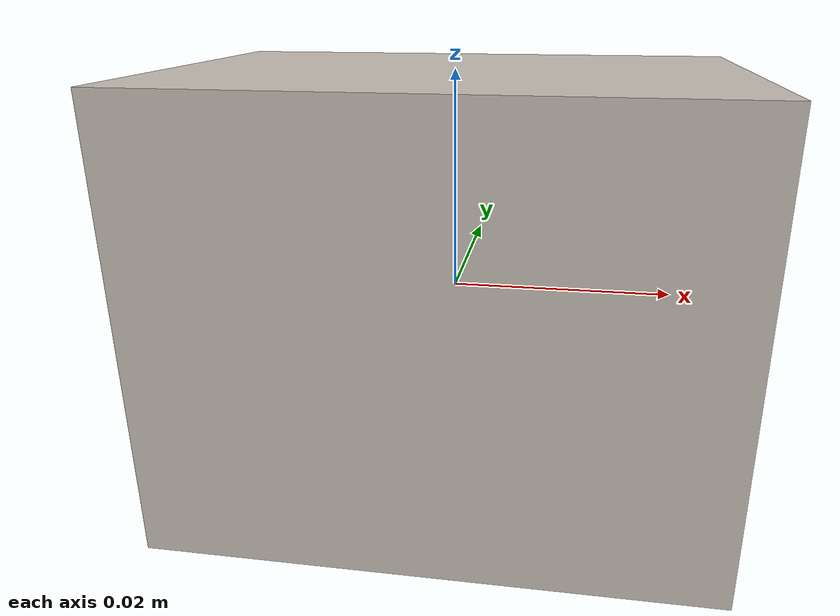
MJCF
<mujoco model="motrin">
  <asset>
    <texture type="cube" file="textures/smallboxes/motrin.png" rgb1="1 1 1" name="tex-motrin"/>
    <material name="motrin" reflectance="0.5" texrepeat="3 3" texture="tex-motrin" texuniform="false"/>
  </asset>
  <worldbody>
    <body>
      <body name="collision">
        <geom pos="0 0 0" size="0.025 0.0175 0.02" type="box" solimp="0.998 0.998 0.001" solref="0.001 1" density="200" friction="0.95 0.3 0.1" material="motrin" group="1" condim="4"/>
      </body>
      <site rgba="0 0 0 0" size="0.005" pos="0 0 -0.05" name="bottom_site"/>
      <site rgba="0 0 0 0" size="0.005" pos="0 0 0.03" name="top_site"/>
      <site rgba="0 0 0 0" size="0.005" pos="0.06 0.06 0" name="horizontal_radius_site"/>
    </body>
  </worldbody>
</mujoco>
